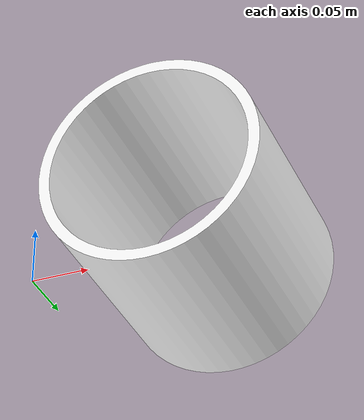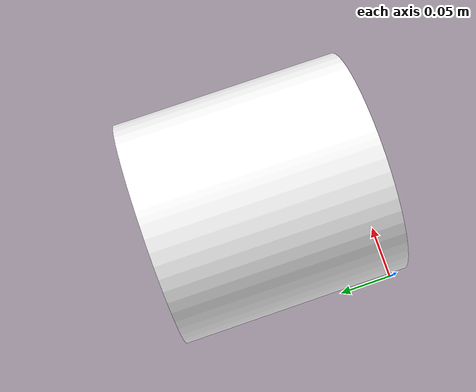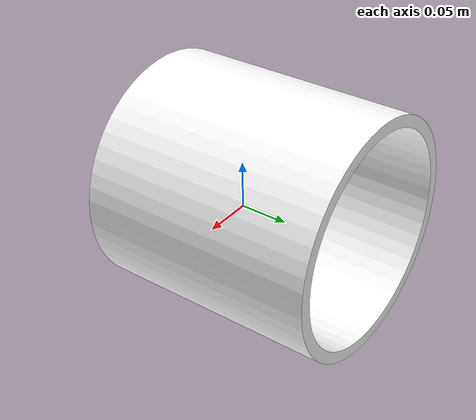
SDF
<?xml version="1.0" ?>
<sdf version="1.9">
  <model name="cylinder_middle">
    <static>true</static>
    <link name="link">
      <collision name="collision">
        <geometry>
          <mesh>
            <uri>model://cylinder_middle/meshes/middle.stl</uri>
	    <scale>0.001 0.001 0.001</scale>
          </mesh>
        </geometry>
      </collision>
      <visual name="visual">
        <geometry>
          <mesh>
            <uri>model://cylinder_middle/meshes/middle.stl</uri>
	    <scale>0.001 0.001 0.001</scale>
          </mesh>
        </geometry>
        <material>
          <ambient>1 1 1 1</ambient>
          <diffuse>1 1 1 1</diffuse>
        </material>
      </visual>
    </link>
  </model>
</sdf>
